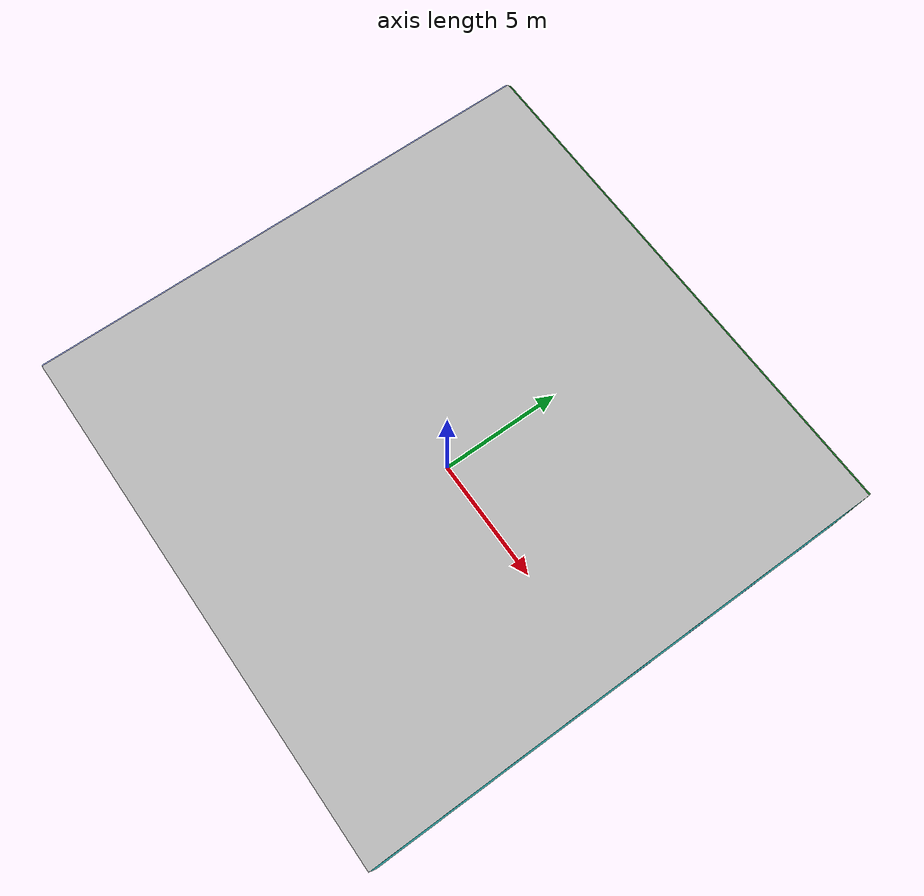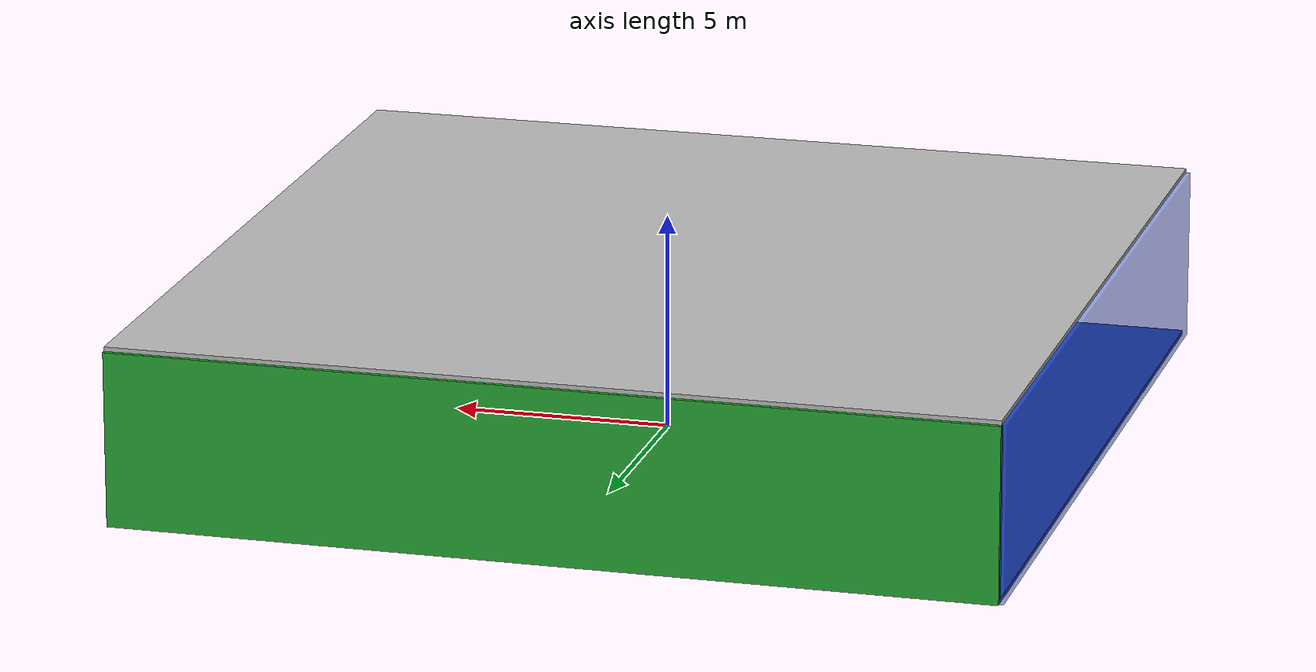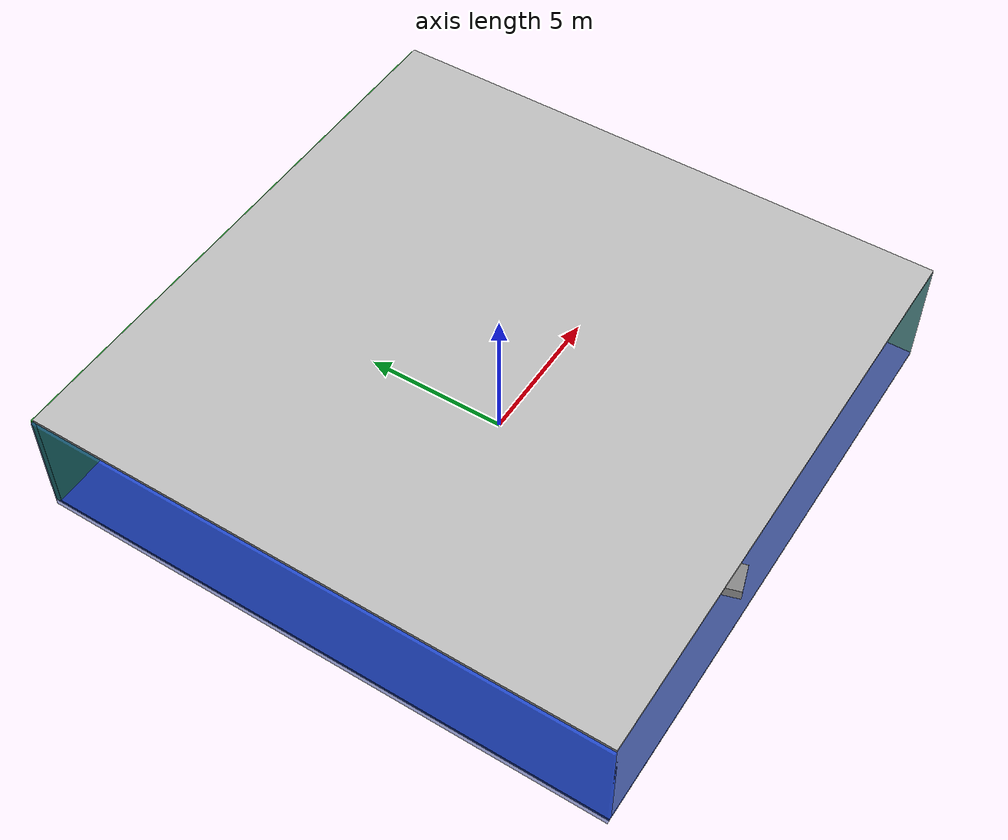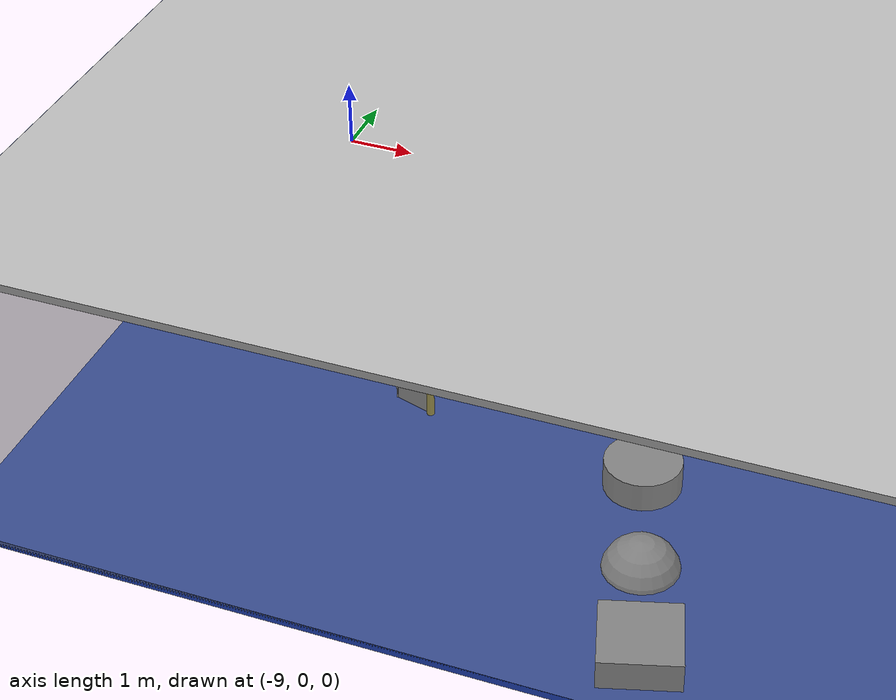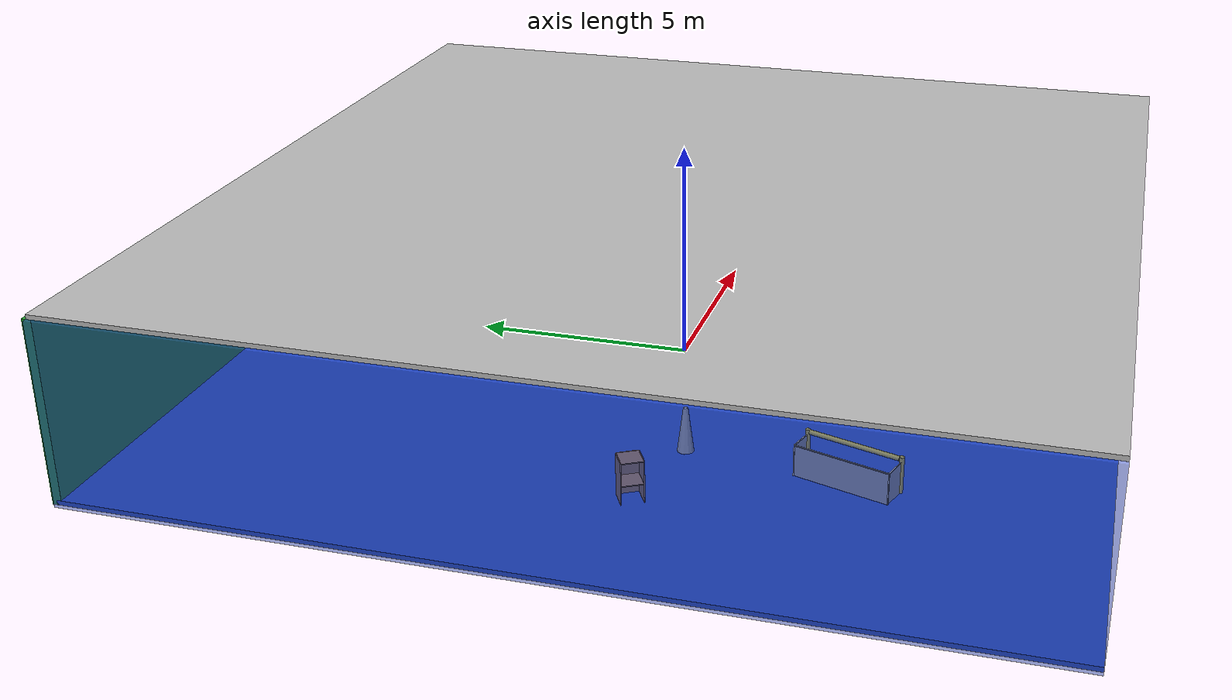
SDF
<sdf version="1.4">
 <world name="default">
  <physics type="ode">
   <max_step_size>0.001</max_step_size>
   <real_time_factor>1</real_time_factor>
   <real_time_update_rate>1000</real_time_update_rate>
   <gravity>0 0 -9.8</gravity>
  </physics>
  <scene><ambient>0.4 0.4 0.4 1</ambient><background>0.7 0.7 0.7 1</background><shadows>1</shadows></scene>
  <model name="Surrounding">
   <static>1</static>
   <link name="Ceiling">
    <collision name="Ceiling_Collision"><geometry><box><size>20 20 0.1</size></box></geometry></collision>
    <visual name="Ceiling_Visual">
     <geometry><box><size>20 20 0.1</size></box></geometry>
     <material>
      <script><uri>file://media/materials/scripts/gazebo.material</uri><name>Gazebo/JointAnchor</name></script>
     </material>
    </visual>
    <pose>0 0 4.05 0 0 0</pose>
   </link>
   <link name="Wall_South">
    <collision name="Wall_South_Collision">
     <geometry><box><size>20 0 4</size></box></geometry>
     <pose>0 0 2 0 -0 0</pose>
    </collision>
    <visual name="Wall_South_Visual">
     <pose>0 0 2 0 -0 0</pose>
     <geometry><box><size>20 0 4</size></box></geometry>
     <material>
      <script><uri>file://media/materials/scripts/gazebo.material</uri><name>Gazebo/GreyTransparent</name></script>
     </material>
    </visual>
    <velocity_decay><linear>0</linear><angular>0</angular></velocity_decay>
    <pose>0 -10 0 0 -0 0</pose>
   </link>
   <link name="Wall_East">
    <collision name="Wall_21_Collision">
     <geometry><box><size>20 0 4</size></box></geometry>
     <pose>0 0 2 0 -0 0</pose>
    </collision>
    <visual name="Wall_21_Visual">
     <pose>0 0 2 0 -0 0</pose>
     <geometry><box><size>20 0 4</size></box></geometry>
     <material>
      <script><uri>file://media/materials/scripts/gazebo.material</uri><name>Gazebo/TurquoiseGlow</name></script>
     </material>
    </visual>
    <velocity_decay><linear>0</linear><angular>0</angular></velocity_decay>
    <pose>10 0 0 0 -0 1.5708</pose>
   </link>
   <link name="Wall_North">
    <collision name="Wall_22_Collision">
     <geometry><box><size>20 0.2 4</size></box></geometry>
     <pose>0 0 2 0 -0 0</pose>
    </collision>
    <visual name="Wall_22_Visual">
     <pose>0 0 2 0 -0 0</pose>
     <geometry><box><size>20 0.2 4</size></box></geometry>
     <material>
      <script><uri>file://media/materials/scripts/gazebo.material</uri><name>Gazebo/Green</name></script>
     </material>
    </visual>
    <velocity_decay><linear>0</linear><angular>0</angular></velocity_decay>
    <pose>0 10 0 0 -0 0</pose>
   </link>
   <link name="Wall_West">
    <collision name="Wall_23_Collision">
     <geometry><box><size>20 0.2 4</size></box></geometry>
     <pose>0 0 2 0 -0 0</pose>
    </collision>
    <visual name="Wall_23_Visual">
     <pose>0 0 2 0 -0 0</pose>
     <geometry><box><size>20 0.2 4</size></box></geometry>
     <material>
      <script><uri>file://media/materials/scripts/gazebo.material</uri><name>Gazebo/BlueTransparent</name></script>
     </material>
    </visual>
    <velocity_decay><linear>0</linear><angular>0</angular></velocity_decay>
    <pose>-10 0 0 0 0 -1.5708</pose>
   </link>
   <link name="Ground_link">
    <collision name="collision">
     <pose>0 0 .05 0 -0 0</pose>
     <geometry><box><size>20 20 0.1</size></box></geometry>
    </collision>
    <visual name="visual">
     <pose>0 0 .05 0 -0 0</pose>
     <geometry><box><size>20 20 0.1</size></box></geometry>
     <material>
      <script><uri>file://media/materials/scripts/gazebo.material</uri><name>Gazebo/BlueLaser</name></script>
     </material>
    </visual>
   </link>
   <static>1</static>
  </model>
  <spherical_coordinates>
   <surface_model>EARTH_WGS84</surface_model>
   <latitude_deg>0</latitude_deg>
   <longitude_deg>0</longitude_deg>
   <elevation>0</elevation>
   <heading_deg>0</heading_deg>
  </spherical_coordinates>
  <light name="lightball_0" type="diffuse">
   <diffuse>0.8 0.8 0.8 1</diffuse>
   <specular>0.2 0.2 0.2 1</specular>
   <attenuation>
    <range>100</range>
    <constant>0.7</constant>
    <linear>0.01</linear>
    <quadratic>0.001</quadratic>
   </attenuation>
   <direction>-0.5 0.1 -0.9</direction>
   <pose>-5.46313005502 -3.98888554574 3.69915348304 0 0 0</pose>
  </light>
  <light name="lightball_1" type="diffuse">
   <diffuse>0.8 0.8 0.8 1</diffuse>
   <specular>0.2 0.2 0.2 1</specular>
   <attenuation>
    <range>100</range>
    <constant>0.7</constant>
    <linear>0.01</linear>
    <quadratic>0.001</quadratic>
   </attenuation>
   <direction>-0.5 0.1 -0.9</direction>
   <pose>1.81195490284 -3.6418351691 2.24475216822 0 0 0</pose>
  </light>
  <light name="lightball_2" type="diffuse">
   <diffuse>0.8 0.8 0.8 1</diffuse>
   <specular>0.2 0.2 0.2 1</specular>
   <attenuation>
    <range>100</range>
    <constant>0.7</constant>
    <linear>0.01</linear>
    <quadratic>0.001</quadratic>
   </attenuation>
   <direction>-0.5 0.1 -0.9</direction>
   <pose>-8.11372546 -9.56334322482 3.42577469572 0 0 0</pose>
  </light>
  <light name="lightball_3" type="diffuse">
   <diffuse>0.8 0.8 0.8 1</diffuse>
   <specular>0.2 0.2 0.2 1</specular>
   <attenuation>
    <range>100</range>
    <constant>0.7</constant>
    <linear>0.01</linear>
    <quadratic>0.001</quadratic>
   </attenuation>
   <direction>-0.5 0.1 -0.9</direction>
   <pose>-8.5923115297 -8.15097765185 1.20582928934 0 0 0</pose>
  </light>
  <light name="lightball_4" type="diffuse">
   <diffuse>0.8 0.8 0.8 1</diffuse>
   <specular>0.2 0.2 0.2 1</specular>
   <attenuation>
    <range>100</range>
    <constant>0.7</constant>
    <linear>0.01</linear>
    <quadratic>0.001</quadratic>
   </attenuation>
   <direction>-0.5 0.1 -0.9</direction>
   <pose>5.34201542571 1.44165555534 3.19369269802 0 0 0</pose>
  </light>
  <light name="lightball_5" type="diffuse">
   <diffuse>0.8 0.8 0.8 1</diffuse>
   <specular>0.2 0.2 0.2 1</specular>
   <attenuation>
    <range>100</range>
    <constant>0.7</constant>
    <linear>0.01</linear>
    <quadratic>0.001</quadratic>
   </attenuation>
   <direction>-0.5 0.1 -0.9</direction>
   <pose>-6.95169113957 9.66826939107 0.64555468209 0 0 0</pose>
  </light>
  <light name="lightball_6" type="diffuse">
   <diffuse>0.8 0.8 0.8 1</diffuse>
   <specular>0.2 0.2 0.2 1</specular>
   <attenuation>
    <range>100</range>
    <constant>0.7</constant>
    <linear>0.01</linear>
    <quadratic>0.001</quadratic>
   </attenuation>
   <direction>-0.5 0.1 -0.9</direction>
   <pose>0.551791915502 5.30915099207 0.789732693088 0 0 0</pose>
  </light>
  <light name="lightball_7" type="diffuse">
   <diffuse>0.8 0.8 0.8 1</diffuse>
   <specular>0.2 0.2 0.2 1</specular>
   <attenuation>
    <range>100</range>
    <constant>0.7</constant>
    <linear>0.01</linear>
    <quadratic>0.001</quadratic>
   </attenuation>
   <direction>-0.5 0.1 -0.9</direction>
   <pose>-7.04986504314 -9.88441679497 2.92589994293 0 0 0</pose>
  </light>
  <light name="lightball_8" type="diffuse">
   <diffuse>0.8 0.8 0.8 1</diffuse>
   <specular>0.2 0.2 0.2 1</specular>
   <attenuation>
    <range>100</range>
    <constant>0.7</constant>
    <linear>0.01</linear>
    <quadratic>0.001</quadratic>
   </attenuation>
   <direction>-0.5 0.1 -0.9</direction>
   <pose>-8.93794028957 -1.25434179971 1.21846187133 0 0 0</pose>
  </light>
  <light name="lightball_9" type="diffuse">
   <diffuse>0.8 0.8 0.8 1</diffuse>
   <specular>0.2 0.2 0.2 1</specular>
   <attenuation>
    <range>100</range>
    <constant>0.7</constant>
    <linear>0.01</linear>
    <quadratic>0.001</quadratic>
   </attenuation>
   <direction>-0.5 0.1 -0.9</direction>
   <pose>-9.79343152241 -6.62599992746 0.598939382925 0 0 0</pose>
  </light>
  <light name="lightball_10" type="diffuse">
   <diffuse>0.8 0.8 0.8 1</diffuse>
   <specular>0.2 0.2 0.2 1</specular>
   <attenuation>
    <range>100</range>
    <constant>0.7</constant>
    <linear>0.01</linear>
    <quadratic>0.001</quadratic>
   </attenuation>
   <direction>-0.5 0.1 -0.9</direction>
   <pose>8.94558143817 -9.90236692522 1.58976565204 0 0 0</pose>
  </light>
  <light name="lightball_11" type="diffuse">
   <diffuse>0.8 0.8 0.8 1</diffuse>
   <specular>0.2 0.2 0.2 1</specular>
   <attenuation>
    <range>100</range>
    <constant>0.7</constant>
    <linear>0.01</linear>
    <quadratic>0.001</quadratic>
   </attenuation>
   <direction>-0.5 0.1 -0.9</direction>
   <pose>-6.57935035026 -2.78231208532 1.89930538663 0 0 0</pose>
  </light>
  <light name="lightball_12" type="diffuse">
   <diffuse>0.8 0.8 0.8 1</diffuse>
   <specular>0.2 0.2 0.2 1</specular>
   <attenuation>
    <range>100</range>
    <constant>0.7</constant>
    <linear>0.01</linear>
    <quadratic>0.001</quadratic>
   </attenuation>
   <direction>-0.5 0.1 -0.9</direction>
   <pose>-4.22914610965 7.96123527617 1.5793577255 0 0 0</pose>
  </light>
  <include><uri>model://cabinet</uri><pose>-6.9149141475 -0.812560069816 0 0 0 0.518813501545</pose></include>
  <include>
   <uri>model://robocup_3Dsim_goal</uri>
   <pose>-4.96617617833 -4.88231749424 0 0 0 2.83689341884</pose>
  </include>
  <include>
   <uri>model://construction_cone</uri>
   <pose>-4.7726910034 -1.34557979795 0 0 0 2.19823915748</pose>
  </include>
  <include>
   <uri>model://textured_shapes</uri>
   <pose>-1.84052385994 -7.68600876065 0 0 0 0.295540165841</pose>
  </include>
  <include><uri>model://cabinet</uri><pose>-0.866251774741 -4.16846288651 0 0 0 0.254115188949</pose></include>
  <include>
   <uri>model://construction_cone</uri>
   <pose>-1.10763296302 4.21490430498 0 0 0 1.19108777784</pose>
  </include>
  <include>
   <uri>model://construction_cone</uri>
   <pose>1.73218618113 4.43363847081 0 0 0 2.59187846288</pose>
  </include>
  <include><uri>model://cabinet</uri><pose>1.37587984017 7.78210784944 0 0 0 0.28372278762</pose></include>
  <include>
   <uri>model://construction_cone</uri>
   <pose>7.65610533992 -0.955162091757 0 0 0 2.79956559762</pose>
  </include>
  <include>
   <uri>model://construction_cone</uri>
   <pose>7.58726035579 8.20464121361 0 0 0 1.47827328314</pose>
  </include>
 </world>
</sdf>

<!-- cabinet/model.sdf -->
<sdf version="1.5">
  <model name="cabinet">
    <static>true</static>
    <link name="cabinet_bottom_plate">
      <inertial>
        <pose>0 0 -1 0 0 0</pose>
        <inertia>
          <ixx>2.050000</ixx>
          <ixy>0</ixy>
          <ixz>0</ixz>
          <iyy>2.050000</iyy>
          <iyz>0</iyz>
          <izz>2.050000</izz>
        </inertia>
        <mass>25.000000</mass>
      </inertial>
      <collision name="cabinet_bottom_plate_geom">
        <pose>0 0 0.010000 0 0 0</pose>
        <geometry>
          <box>
            <size>0.450000 0.450000 0.020000</size>
          </box>
        </geometry>
      </collision>
      <visual name="cabinet_bottom_plate_geom_visual">
        <pose>0 0 0.010000 0 0 0</pose>
        <geometry>
          <box>
            <size>0.450000 0.450000 0.020000</size>
          </box>
        </geometry>
        <material>
          <script>
            <uri>model://media/materials/scripts/gazebo.material</uri>
            <name>Gazebo/Wood</name>
          </script>
        </material>
      </visual>
      <collision name="cabinet_bottom_plate_geom_cabinet_back_plate">
        <pose>0.235000 0 0.510000 0 0 0</pose>
        <geometry>
          <box>
            <size>0.020000 0.450000 1.020000</size>
          </box>
        </geometry>
      </collision>
      <visual name="cabinet_bottom_plate_geom_cabinet_back_plate_visual">
        <pose>0.235000 0 0.510000 0 0 0</pose>
        <geometry>
          <box>
            <size>0.020000 0.450000 1.020000</size>
          </box>
        </geometry>
        <material>
          <script>
            <uri>model://media/materials/scripts/gazebo.material</uri>
            <name>Gazebo/Wood</name>
          </script>
        </material>
      </visual>
      <collision name="cabinet_bottom_plate_geom_cabinet_left_plate">
        <pose>0 0.235000 0.510000 0 0 0</pose>
        <geometry>
          <box>
            <size>0.450000 0.020000 1.020000</size>
          </box>
        </geometry>
      </collision>
      <visual name="cabinet_bottom_plate_geom_cabinet_left_plate_visual">
        <pose>0 0.235000 0.510000 0 0 0</pose>
        <geometry>
          <box>
            <size>0.450000 0.020000 1.020000</size>
          </box>
        </geometry>
        <material>
          <script>
            <uri>model://media/materials/scripts/gazebo.material</uri>
            <name>Gazebo/Wood</name>
          </script>
        </material>
      </visual>
      <collision name="cabinet_bottom_plate_geom_cabinet_middle_plate">
        <pose>0 0 0.510000 0 0 0</pose>
        <geometry>
          <box>
            <size>0.450000 0.450000 0.020000</size>
          </box>
        </geometry>
      </collision>
      <visual name="cabinet_bottom_plate_geom_cabinet_middle_plate_visual">
        <pose>0 0 0.510000 0 0 0</pose>
        <geometry>
          <box>
            <size>0.450000 0.450000 0.020000</size>
          </box>
        </geometry>
        <material>
          <script>
            <uri>model://media/materials/scripts/gazebo.material</uri>
            <name>Gazebo/Wood</name>
          </script>
        </material>
      </visual>
      <collision name="cabinet_bottom_plate_geom_cabinet_right_plate">
        <pose>0 -0.235000 0.510000 0 0 0</pose>
        <geometry>
          <box>
            <size>0.450000 0.020000 1.020000</size>
          </box>
        </geometry>
      </collision>
      <visual name="cabinet_bottom_plate_geom_cabinet_right_plate_visual">
        <pose>0 -0.235000 0.510000 0 0 0</pose>
        <geometry>
          <box>
            <size>0.450000 0.020000 1.020000</size>
          </box>
        </geometry>
        <material>
          <script>
            <uri>model://media/materials/scripts/gazebo.material</uri>
            <name>Gazebo/Wood</name>
          </script>
        </material>
      </visual>
      <collision name="cabinet_bottom_plate_geom_cabinet_top_plate">
        <pose>0 0 1.010000 0 0 0</pose>
        <geometry>
          <box>
            <size>0.450000 0.450000 0.020000</size>
          </box>
        </geometry>
      </collision>
      <visual name="cabinet_bottom_plate_geom_cabinet_top_plate_visual">
        <pose>0 0 1.010000 0 0 0</pose>
        <geometry>
          <box>
            <size>0.450000 0.450000 0.020000</size>
          </box>
        </geometry>
        <material>
          <script>
            <uri>model://media/materials/scripts/gazebo.material</uri>
            <name>Gazebo/Wood</name>
          </script>
        </material>
      </visual>
    </link>
  </model>
</sdf>

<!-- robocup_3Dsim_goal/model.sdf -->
<sdf version="1.5">
  <model name="robocup_3d_goal">
    <static>true</static>
    <link name="left_post">
      <pose>0 1.05 0.45 0 0 0</pose>
      <collision name="collision">
        <geometry>
          <cylinder>
            <radius>0.05</radius>
            <length>0.9</length>
          </cylinder>
        </geometry>
      </collision>
      <visual name="visual">
        <geometry>
          <cylinder>
            <radius>0.05</radius>
            <length>0.9</length>
          </cylinder>
        </geometry>
        <material>
          <script>
            <uri>file://media/materials/scripts/gazebo.material</uri>
            <name>Gazebo/ZincYellow</name>
          </script>
        </material>
      </visual>
    </link>
    <link name="left_support_horiz_lower">
      <pose>0.30 1.05 0.01 0 0 0</pose>
      <collision name="collision">
        <geometry>
          <box>
            <size>0.50 0.02 0.02</size>
          </box>
        </geometry>
      </collision>
      <visual name="visual">
        <geometry>
          <box>
            <size>0.50 0.02 0.02</size>
          </box>
        </geometry>
        <material>
          <script>
            <uri>file://media/materials/scripts/gazebo.material</uri>
            <name>Gazebo/White</name>
          </script>
        </material>
      </visual>
    </link>
    <link name="left_support_horiz_upper">
      <pose>0.30 1.05 0.79 0 0 0</pose>
      <collision name="collision">
        <geometry>
          <box>
            <size>0.50 0.02 0.02</size>
          </box>
        </geometry>
      </collision>
      <visual name="visual">
        <geometry>
          <box>
            <size>0.50 0.02 0.02</size>
          </box>
        </geometry>
        <material>
          <script>
            <uri>file://media/materials/scripts/gazebo.material</uri>
            <name>Gazebo/White</name>
          </script>
        </material>
      </visual>
    </link>
    <link name="left_support_vertical">
      <pose>0.56 1.05 0.4 0 1.5708 0</pose>
      <collision name="collision">
        <geometry>
          <box>
            <size>0.80 0.02 0.02</size>
          </box>
        </geometry>
      </collision>
      <visual name="visual">
        <geometry>
          <box>
            <size>0.80 0.02 0.02</size>
          </box>
        </geometry>
        <material>
          <script>
            <uri>file://media/materials/scripts/gazebo.material</uri>
            <name>Gazebo/White</name>
          </script>
        </material>
      </visual>
    </link>
    <link name="right_support_horiz_lower">
      <pose>0.30 -1.05 0.01 0 0 0</pose>
      <collision name="collision">
        <geometry>
          <box>
            <size>0.50 0.02 0.02</size>
          </box>
        </geometry>
      </collision>
      <visual name="visual">
        <geometry>
          <box>
            <size>0.50 0.02 0.02</size>
          </box>
        </geometry>
        <material>
          <script>
            <uri>file://media/materials/scripts/gazebo.material</uri>
            <name>Gazebo/White</name>
          </script>
        </material>
      </visual>
    </link>
    <link name="right_support_horiz_upper">
      <pose>0.30 -1.05 0.79 0 0 0</pose>
      <collision name="collision">
        <geometry>
          <box>
            <size>0.50 0.02 0.02</size>
          </box>
        </geometry>
      </collision>
      <visual name="visual">
        <geometry>
          <box>
            <size>0.50 0.02 0.02</size>
          </box>
        </geometry>
        <material>
          <script>
            <uri>file://media/materials/scripts/gazebo.material</uri>
            <name>Gazebo/White</name>
          </script>
        </material>
      </visual>
    </link>
    <link name="right_support_vertical">
      <pose>0.56 -1.05 0.4 0 1.5708 0</pose>
      <collision name="collision">
        <geometry>
          <box>
            <size>0.80 0.02 0.02</size>
          </box>
        </geometry>
      </collision>
      <visual name="visual">
        <geometry>
          <box>
            <size>0.80 0.02 0.02</size>
          </box>
        </geometry>
        <material>
          <script>
            <uri>file://media/materials/scripts/gazebo.material</uri>
            <name>Gazebo/White</name>
          </script>
        </material>
      </visual>
    </link>
    <link name="center_support_horiz_lower">
      <pose>0.56 0 0.01 0 1.5708 0</pose>
      <collision name="collision">
        <geometry>
          <box>
            <size>0.02 2.08 0.02</size>
          </box>
        </geometry>
      </collision>
      <visual name="visual">
        <geometry>
          <box>
            <size>0.02 2.08 0.02</size>
          </box>
        </geometry>
        <material>
          <script>
            <uri>file://media/materials/scripts/gazebo.material</uri>
            <name>Gazebo/White</name>
          </script>
        </material>
      </visual>
    </link>
    <link name="center_support_horiz_upper">
      <pose>0.56 0 0.79 0 1.5708 0</pose>
      <collision name="collision">
        <geometry>
          <box>
            <size>0.02 2.08 0.02</size>
          </box>
        </geometry>
      </collision>
      <visual name="visual">
        <geometry>
          <box>
            <size>0.02 2.08 0.02</size>
          </box>
        </geometry>
        <material>
          <script>
            <uri>file://media/materials/scripts/gazebo.material</uri>
            <name>Gazebo/White</name>
          </script>
        </material>
      </visual>
    </link>
    <link name="right_post">
      <pose>0 -1.05 0.45 0 0 0</pose>
      <collision name="collision">
        <geometry>
          <cylinder>
            <radius>0.05</radius>
            <length>0.9</length>
          </cylinder>
        </geometry>
      </collision>
      <visual name="visual">
        <geometry>
          <cylinder>
            <radius>0.05</radius>
            <length>0.9</length>
          </cylinder>
        </geometry>
        <material>
          <script>
            <uri>file://media/materials/scripts/gazebo.material</uri>
            <name>Gazebo/ZincYellow</name>
          </script>
        </material>
      </visual>
    </link>
    <link name="crossbar">
      <pose>0 0 0.85 1.57 1.57 0</pose>
      <collision name="collision">
        <geometry>
          <cylinder>
            <radius>0.05</radius>
            <length>2.0</length>
          </cylinder>
        </geometry>
      </collision>
      <visual name="visual">
        <geometry>
          <cylinder>
            <radius>0.05</radius>
            <length>2.0</length>
          </cylinder>
        </geometry>
        <material>
          <script>
            <uri>file://media/materials/scripts/gazebo.material</uri>
            <name>Gazebo/ZincYellow</name>
          </script>
        </material>
      </visual>
    </link>
    <link name="center_net">
      <pose>0.56 0 0.40 0 0 0</pose>
      <collision name="collision">
        <geometry>
          <box>
            <size>0.01 2.1 0.80</size>
          </box>
        </geometry>
      </collision>
      <visual name="visual">
        <geometry>
          <box>
            <size>0.01 2.1 0.80</size>
          </box>
        </geometry>
        <material>
          <script>
            <uri>model://../model_source/models/robocup09_spl_field/materials/scripts/</uri>
            <uri>model://../model_source/models/robocup09_spl_field/materials/textures/</uri>
            <name>RoboCup/Net</name>
          </script>
        </material>
      </visual>
    </link>
    <link name="left_net">
      <pose>0.30 1.05 0.40 0 0 0</pose>
      <collision name="collision">
        <geometry>
          <box>
            <size>0.50 0.01 0.76</size>
          </box>
        </geometry>
      </collision>
      <visual name="visual">
        <geometry>
          <box>
            <size>0.50 0.01 0.76</size>
          </box>
        </geometry>
        <material>
          <script>
            <uri>model://../model_source/models/robocup09_spl_field/materials/scripts/</uri>
            <uri>model://../model_source/models/robocup09_spl_field/materials/textures/</uri>
            <name>RoboCup/Net</name>
          </script>
        </material>
      </visual>
    </link>
    <link name="right_net">
      <pose>0.30 -1.05 0.40 0 0 0</pose>
      <collision name="collision">
        <geometry>
          <box>
            <size>0.50 0.01 0.76</size>
          </box>
        </geometry>
      </collision>
      <visual name="visual">
        <geometry>
          <box>
            <size>0.50 0.01 0.76</size>
          </box>
        </geometry>
        <material>
          <script>
            <uri>model://../model_source/models/robocup09_spl_field/materials/scripts/</uri>
            <uri>model://../model_source/models/robocup09_spl_field/materials/textures/</uri>
            <name>RoboCup/Net</name>
          </script>
        </material>
      </visual>
    </link>
  </model>
</sdf>

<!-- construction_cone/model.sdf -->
<sdf version="1.5">
  <model name="Construction Cone">
    <link name="link">
      <collision name="collision">
        <geometry>
          <mesh>
            <scale>10 10 10</scale>
            <uri>file://isr-testbed/construction_cone/meshes/construction_cone.dae</uri>
          </mesh>
        </geometry>
      </collision>
      <visual name="visual">
        <geometry>
          <mesh>
            <scale>10 10 10</scale>
            <uri>file://isr-testbed/construction_cone/meshes/construction_cone.dae</uri>
          </mesh>
        </geometry>
      </visual>
    </link>
  </model>
</sdf>

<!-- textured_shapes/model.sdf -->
<sdf version="1.6">
  <model name="textured_shapes">
    <pose>0 0 0.5 0 0 0</pose>
    <link name="box">
      <pose>0 -1.5 0 0 0 0</pose>
      <collision name="collision">
        <geometry>
          <box>
            <size>1 1 1</size>
          </box>
        </geometry>
      </collision>
      <visual name="visual">
        <geometry>
          <box>
            <size>1 1 1</size>
          </box>
        </geometry>
        <material>
          <script>
            <uri>model://../model_source/models/textured_shapes/materials/scripts</uri>
            <uri>model://../model_source/models/textured_shapes/materials/textures</uri>
            <name>TexturedShape/Squares</name>
          </script>
        </material>
      </visual>
    </link>
    <link name="sphere">
      <collision name="collision">
        <geometry>
          <sphere>
            <radius>0.5</radius>
          </sphere>
        </geometry>
      </collision>
      <visual name="visual">
        <geometry>
          <sphere>
            <radius>0.5</radius>
          </sphere>
        </geometry>
        <material>
          <script>
            <uri>model://../model_source/models/textured_shapes/materials/scripts</uri>
            <uri>model://../model_source/models/textured_shapes/materials/textures</uri>
            <name>TexturedShape/Squares</name>
          </script>
        </material>
      </visual>
    </link>
    <link name="cylinder">
      <pose>0 1.5 0 0 0 0</pose>
      <collision name="collision">
        <geometry>
          <cylinder>
            <radius>0.5</radius>
            <length>1</length>
          </cylinder>
        </geometry>
      </collision>
      <visual name="visual">
        <geometry>
          <cylinder>
            <radius>0.5</radius>
            <length>1</length>
          </cylinder>
        </geometry>
        <material>
          <script>
            <uri>model://../model_source/models/textured_shapes/materials/scripts</uri>
            <uri>model://../model_source/models/textured_shapes/materials/textures</uri>
            <name>TexturedShape/Squares</name>
          </script>
        </material>
      </visual>
    </link>
  </model>
</sdf>
